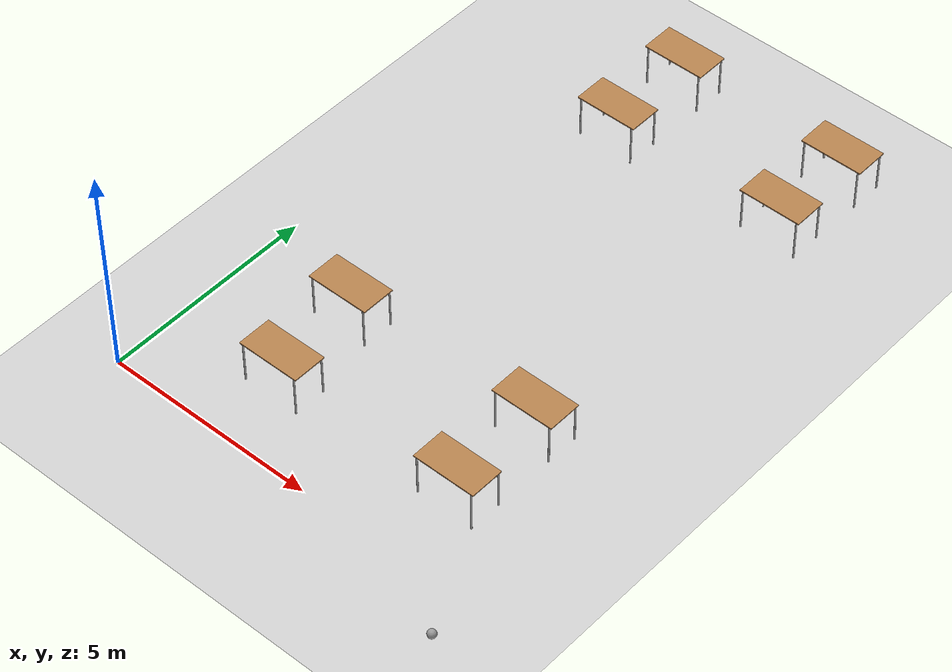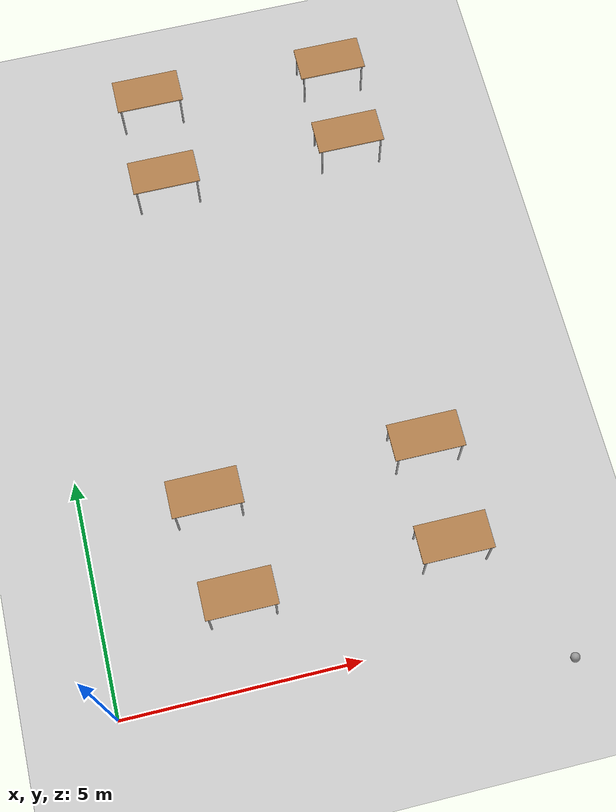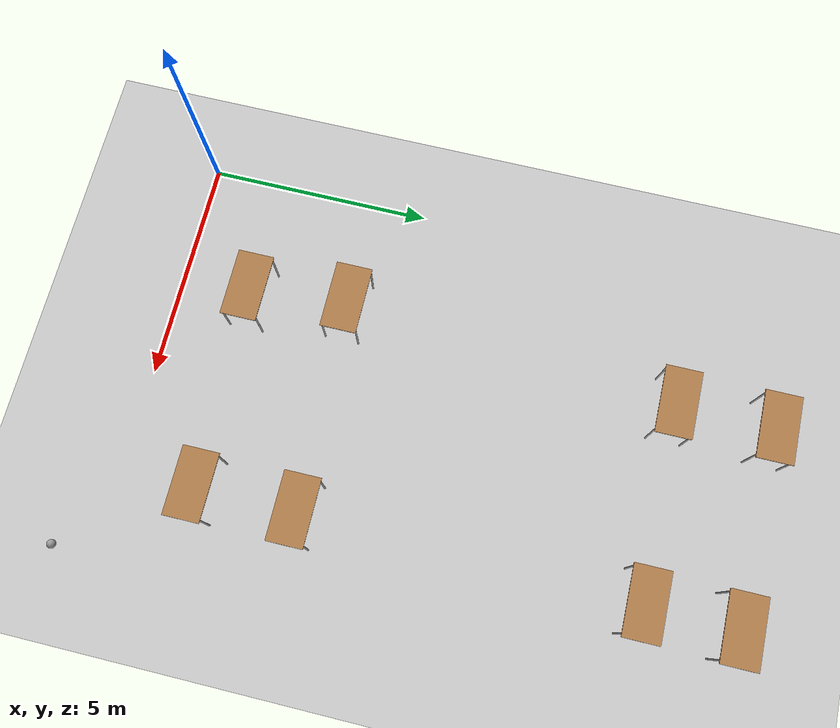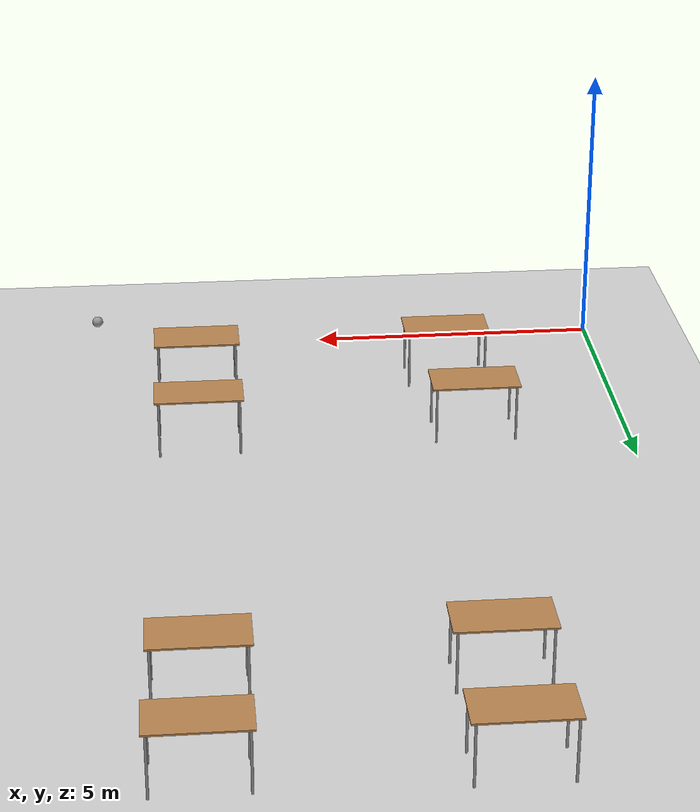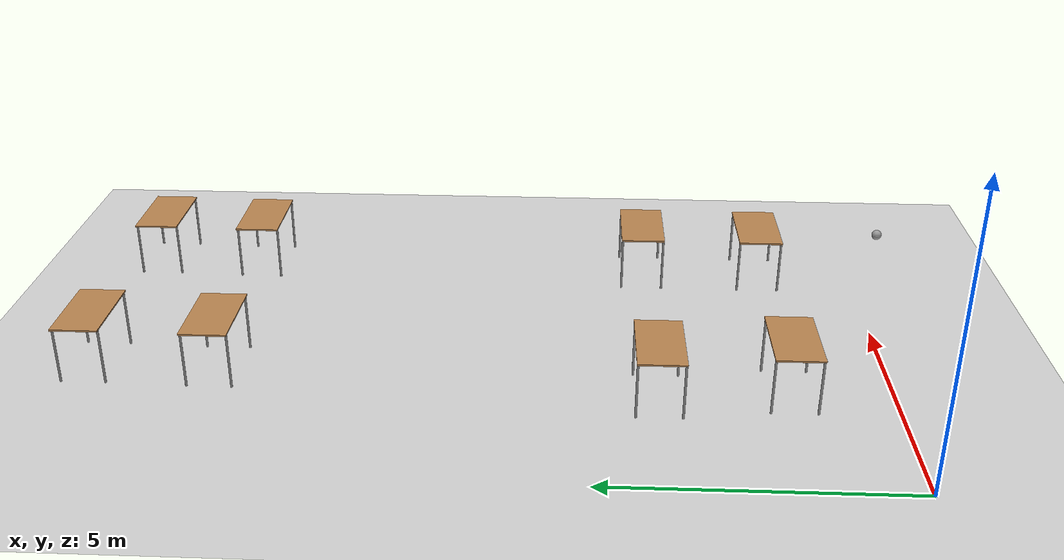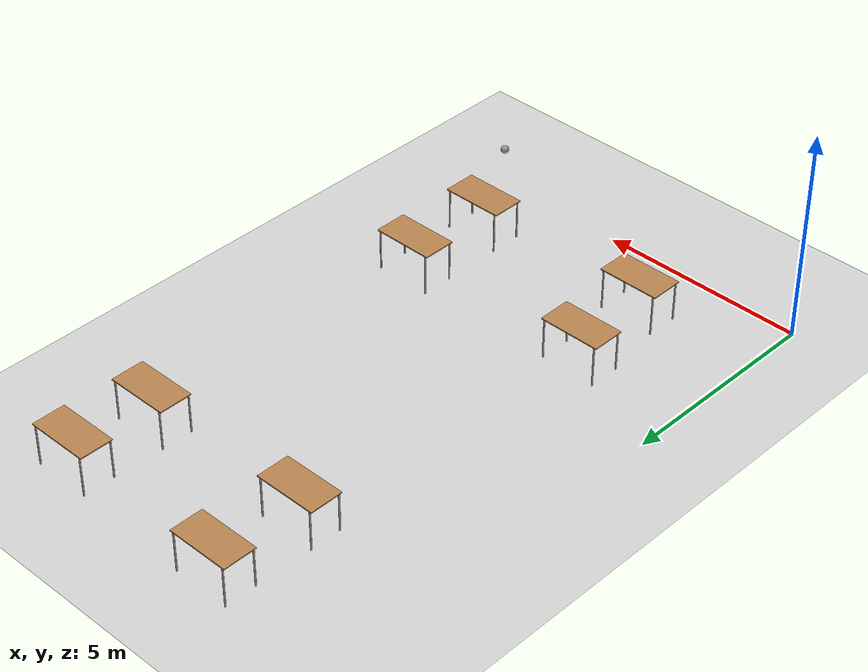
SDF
<sdf version="1.6">
 <world name="default">
  <model name="ground_plane">
   <static>1</static>
   <link name="link">
    <collision name="collision">
     <geometry><plane><normal>0 0 1</normal><size>100 100</size></plane></geometry>
     <surface>
      <contact><collide_bitmask>65535</collide_bitmask></contact>
      <friction><ode><mu>100</mu><mu2>50</mu2></ode></friction>
     </surface>
    </collision>
    <visual name="visual">
     <cast_shadows>0</cast_shadows>
     <geometry><plane><normal>0 0 1</normal><size>100 100</size></plane></geometry>
     <material>
      <script><uri>file://media/materials/scripts/gazebo.material</uri><name>Gazebo/Grey</name></script>
     </material>
    </visual>
   </link>
  </model>
  <model name="table_0">
   <static>1</static>
   <link name="link">
    <collision name="surface">
     <pose>0 0 1 0 -0 0</pose>
     <geometry><box><size>1.5 0.8 0.03</size></box></geometry>
     <surface><friction><ode><mu>0.6</mu><mu2>0.6</mu2></ode></friction></surface>
    </collision>
    <visual name="visual1">
     <pose>0 0 1 0 -0 0</pose>
     <geometry><box><size>1.5 0.8 0.03</size></box></geometry>
     <material>
      <script><uri>file://media/materials/scripts/gazebo.material</uri><name>Gazebo/Wood</name></script>
     </material>
    </visual>
    <collision name="front_left_leg">
     <pose>0.68 0.38 0.5 0 -0 0</pose>
     <geometry><cylinder><radius>0.02</radius><length>1</length></cylinder></geometry>
    </collision>
    <visual name="front_left_leg">
     <pose>0.68 0.38 0.5 0 -0 0</pose>
     <geometry><cylinder><radius>0.02</radius><length>1</length></cylinder></geometry>
     <material>
      <script><uri>file://media/materials/scripts/gazebo.material</uri><name>Gazebo/Grey</name></script>
     </material>
    </visual>
    <collision name="front_right_leg">
     <pose>0.68 -0.38 0.5 0 -0 0</pose>
     <geometry><cylinder><radius>0.02</radius><length>1</length></cylinder></geometry>
    </collision>
    <visual name="front_right_leg">
     <pose>0.68 -0.38 0.5 0 -0 0</pose>
     <geometry><cylinder><radius>0.02</radius><length>1</length></cylinder></geometry>
     <material>
      <script><uri>file://media/materials/scripts/gazebo.material</uri><name>Gazebo/Grey</name></script>
     </material>
    </visual>
    <collision name="back_right_leg">
     <pose>-0.68 -0.38 0.5 0 -0 0</pose>
     <geometry><cylinder><radius>0.02</radius><length>1</length></cylinder></geometry>
    </collision>
    <visual name="back_right_leg">
     <pose>-0.68 -0.38 0.5 0 -0 0</pose>
     <geometry><cylinder><radius>0.02</radius><length>1</length></cylinder></geometry>
     <material>
      <script><uri>file://media/materials/scripts/gazebo.material</uri><name>Gazebo/Grey</name></script>
     </material>
    </visual>
    <collision name="back_left_leg">
     <pose>-0.68 0.38 0.5 0 -0 0</pose>
     <geometry><cylinder><radius>0.02</radius><length>1</length></cylinder></geometry>
    </collision>
    <visual name="back_left_leg">
     <pose>-0.68 0.38 0.5 0 -0 0</pose>
     <geometry><cylinder><radius>0.02</radius><length>1</length></cylinder></geometry>
     <material>
      <script><uri>file://media/materials/scripts/gazebo.material</uri><name>Gazebo/Grey</name></script>
     </material>
    </visual>
   </link>
   <pose>7.55328 13.3497 0 0 -0 0</pose>
  </model>
  <model name="table_clone_2">
   <static>1</static>
   <link name="link">
    <collision name="surface">
     <pose>0 0 1 0 -0 0</pose>
     <geometry><box><size>1.5 0.8 0.03</size></box></geometry>
     <surface><friction><ode><mu>0.6</mu><mu2>0.6</mu2></ode></friction></surface>
    </collision>
    <visual name="visual1">
     <pose>0 0 1 0 -0 0</pose>
     <geometry><box><size>1.5 0.8 0.03</size></box></geometry>
     <material>
      <script><uri>file://media/materials/scripts/gazebo.material</uri><name>Gazebo/Wood</name></script>
     </material>
    </visual>
    <collision name="front_left_leg">
     <pose>0.68 0.38 0.5 0 -0 0</pose>
     <geometry><cylinder><radius>0.02</radius><length>1</length></cylinder></geometry>
    </collision>
    <visual name="front_left_leg">
     <pose>0.68 0.38 0.5 0 -0 0</pose>
     <geometry><cylinder><radius>0.02</radius><length>1</length></cylinder></geometry>
     <material>
      <script><uri>file://media/materials/scripts/gazebo.material</uri><name>Gazebo/Grey</name></script>
     </material>
    </visual>
    <collision name="front_right_leg">
     <pose>0.68 -0.38 0.5 0 -0 0</pose>
     <geometry><cylinder><radius>0.02</radius><length>1</length></cylinder></geometry>
    </collision>
    <visual name="front_right_leg">
     <pose>0.68 -0.38 0.5 0 -0 0</pose>
     <geometry><cylinder><radius>0.02</radius><length>1</length></cylinder></geometry>
     <material>
      <script><uri>file://media/materials/scripts/gazebo.material</uri><name>Gazebo/Grey</name></script>
     </material>
    </visual>
    <collision name="back_right_leg">
     <pose>-0.68 -0.38 0.5 0 -0 0</pose>
     <geometry><cylinder><radius>0.02</radius><length>1</length></cylinder></geometry>
    </collision>
    <visual name="back_right_leg">
     <pose>-0.68 -0.38 0.5 0 -0 0</pose>
     <geometry><cylinder><radius>0.02</radius><length>1</length></cylinder></geometry>
     <material>
      <script><uri>file://media/materials/scripts/gazebo.material</uri><name>Gazebo/Grey</name></script>
     </material>
    </visual>
    <collision name="back_left_leg">
     <pose>-0.68 0.38 0.5 0 -0 0</pose>
     <geometry><cylinder><radius>0.02</radius><length>1</length></cylinder></geometry>
    </collision>
    <visual name="back_left_leg">
     <pose>-0.68 0.38 0.5 0 -0 0</pose>
     <geometry><cylinder><radius>0.02</radius><length>1</length></cylinder></geometry>
     <material>
      <script><uri>file://media/materials/scripts/gazebo.material</uri><name>Gazebo/Grey</name></script>
     </material>
    </visual>
   </link>
   <pose>3.3068 13.4619 0 0 -0 0</pose>
  </model>
  <model name="table_3">
   <static>1</static>
   <link name="link">
    <collision name="surface">
     <pose>0 0 1 0 -0 0</pose>
     <geometry><box><size>1.5 0.8 0.03</size></box></geometry>
     <surface><friction><ode><mu>0.6</mu><mu2>0.6</mu2></ode></friction></surface>
    </collision>
    <visual name="visual1">
     <pose>0 0 1 0 -0 0</pose>
     <geometry><box><size>1.5 0.8 0.03</size></box></geometry>
     <material>
      <script><uri>file://media/materials/scripts/gazebo.material</uri><name>Gazebo/Wood</name></script>
     </material>
    </visual>
    <collision name="front_left_leg">
     <pose>0.68 0.38 0.5 0 -0 0</pose>
     <geometry><cylinder><radius>0.02</radius><length>1</length></cylinder></geometry>
    </collision>
    <visual name="front_left_leg">
     <pose>0.68 0.38 0.5 0 -0 0</pose>
     <geometry><cylinder><radius>0.02</radius><length>1</length></cylinder></geometry>
     <material>
      <script><uri>file://media/materials/scripts/gazebo.material</uri><name>Gazebo/Grey</name></script>
     </material>
    </visual>
    <collision name="front_right_leg">
     <pose>0.68 -0.38 0.5 0 -0 0</pose>
     <geometry><cylinder><radius>0.02</radius><length>1</length></cylinder></geometry>
    </collision>
    <visual name="front_right_leg">
     <pose>0.68 -0.38 0.5 0 -0 0</pose>
     <geometry><cylinder><radius>0.02</radius><length>1</length></cylinder></geometry>
     <material>
      <script><uri>file://media/materials/scripts/gazebo.material</uri><name>Gazebo/Grey</name></script>
     </material>
    </visual>
    <collision name="back_right_leg">
     <pose>-0.68 -0.38 0.5 0 -0 0</pose>
     <geometry><cylinder><radius>0.02</radius><length>1</length></cylinder></geometry>
    </collision>
    <visual name="back_right_leg">
     <pose>-0.68 -0.38 0.5 0 -0 0</pose>
     <geometry><cylinder><radius>0.02</radius><length>1</length></cylinder></geometry>
     <material>
      <script><uri>file://media/materials/scripts/gazebo.material</uri><name>Gazebo/Grey</name></script>
     </material>
    </visual>
    <collision name="back_left_leg">
     <pose>-0.68 0.38 0.5 0 -0 0</pose>
     <geometry><cylinder><radius>0.02</radius><length>1</length></cylinder></geometry>
    </collision>
    <visual name="back_left_leg">
     <pose>-0.68 0.38 0.5 0 -0 0</pose>
     <geometry><cylinder><radius>0.02</radius><length>1</length></cylinder></geometry>
     <material>
      <script><uri>file://media/materials/scripts/gazebo.material</uri><name>Gazebo/Grey</name></script>
     </material>
    </visual>
   </link>
   <pose>7.33008 4.00792 0 0 -0 0</pose>
  </model>
  <model name="table_4">
   <static>1</static>
   <link name="link">
    <collision name="surface">
     <pose>0 0 1 0 -0 0</pose>
     <geometry><box><size>1.5 0.8 0.03</size></box></geometry>
     <surface><friction><ode><mu>0.6</mu><mu2>0.6</mu2></ode></friction></surface>
    </collision>
    <visual name="visual1">
     <pose>0 0 1 0 -0 0</pose>
     <geometry><box><size>1.5 0.8 0.03</size></box></geometry>
     <material>
      <script><uri>file://media/materials/scripts/gazebo.material</uri><name>Gazebo/Wood</name></script>
     </material>
    </visual>
    <collision name="front_left_leg">
     <pose>0.68 0.38 0.5 0 -0 0</pose>
     <geometry><cylinder><radius>0.02</radius><length>1</length></cylinder></geometry>
    </collision>
    <visual name="front_left_leg">
     <pose>0.68 0.38 0.5 0 -0 0</pose>
     <geometry><cylinder><radius>0.02</radius><length>1</length></cylinder></geometry>
     <material>
      <script><uri>file://media/materials/scripts/gazebo.material</uri><name>Gazebo/Grey</name></script>
     </material>
    </visual>
    <collision name="front_right_leg">
     <pose>0.68 -0.38 0.5 0 -0 0</pose>
     <geometry><cylinder><radius>0.02</radius><length>1</length></cylinder></geometry>
    </collision>
    <visual name="front_right_leg">
     <pose>0.68 -0.38 0.5 0 -0 0</pose>
     <geometry><cylinder><radius>0.02</radius><length>1</length></cylinder></geometry>
     <material>
      <script><uri>file://media/materials/scripts/gazebo.material</uri><name>Gazebo/Grey</name></script>
     </material>
    </visual>
    <collision name="back_right_leg">
     <pose>-0.68 -0.38 0.5 0 -0 0</pose>
     <geometry><cylinder><radius>0.02</radius><length>1</length></cylinder></geometry>
    </collision>
    <visual name="back_right_leg">
     <pose>-0.68 -0.38 0.5 0 -0 0</pose>
     <geometry><cylinder><radius>0.02</radius><length>1</length></cylinder></geometry>
     <material>
      <script><uri>file://media/materials/scripts/gazebo.material</uri><name>Gazebo/Grey</name></script>
     </material>
    </visual>
    <collision name="back_left_leg">
     <pose>-0.68 0.38 0.5 0 -0 0</pose>
     <geometry><cylinder><radius>0.02</radius><length>1</length></cylinder></geometry>
    </collision>
    <visual name="back_left_leg">
     <pose>-0.68 0.38 0.5 0 -0 0</pose>
     <geometry><cylinder><radius>0.02</radius><length>1</length></cylinder></geometry>
     <material>
      <script><uri>file://media/materials/scripts/gazebo.material</uri><name>Gazebo/Grey</name></script>
     </material>
    </visual>
   </link>
   <pose>2.63408 3.89107 0 0 -0 0</pose>
  </model>
  <model name="table_clone_3">
   <static>1</static>
   <link name="link">
    <collision name="surface">
     <pose>0 0 1 0 -0 0</pose>
     <geometry><box><size>1.5 0.8 0.03</size></box></geometry>
     <surface><friction><ode><mu>0.6</mu><mu2>0.6</mu2></ode></friction></surface>
    </collision>
    <visual name="visual1">
     <pose>0 0 1 0 -0 0</pose>
     <geometry><box><size>1.5 0.8 0.03</size></box></geometry>
     <material>
      <script><uri>file://media/materials/scripts/gazebo.material</uri><name>Gazebo/Wood</name></script>
     </material>
    </visual>
    <collision name="front_left_leg">
     <pose>0.68 0.38 0.5 0 -0 0</pose>
     <geometry><cylinder><radius>0.02</radius><length>1</length></cylinder></geometry>
    </collision>
    <visual name="front_left_leg">
     <pose>0.68 0.38 0.5 0 -0 0</pose>
     <geometry><cylinder><radius>0.02</radius><length>1</length></cylinder></geometry>
     <material>
      <script><uri>file://media/materials/scripts/gazebo.material</uri><name>Gazebo/Grey</name></script>
     </material>
    </visual>
    <collision name="front_right_leg">
     <pose>0.68 -0.38 0.5 0 -0 0</pose>
     <geometry><cylinder><radius>0.02</radius><length>1</length></cylinder></geometry>
    </collision>
    <visual name="front_right_leg">
     <pose>0.68 -0.38 0.5 0 -0 0</pose>
     <geometry><cylinder><radius>0.02</radius><length>1</length></cylinder></geometry>
     <material>
      <script><uri>file://media/materials/scripts/gazebo.material</uri><name>Gazebo/Grey</name></script>
     </material>
    </visual>
    <collision name="back_right_leg">
     <pose>-0.68 -0.38 0.5 0 -0 0</pose>
     <geometry><cylinder><radius>0.02</radius><length>1</length></cylinder></geometry>
    </collision>
    <visual name="back_right_leg">
     <pose>-0.68 -0.38 0.5 0 -0 0</pose>
     <geometry><cylinder><radius>0.02</radius><length>1</length></cylinder></geometry>
     <material>
      <script><uri>file://media/materials/scripts/gazebo.material</uri><name>Gazebo/Grey</name></script>
     </material>
    </visual>
    <collision name="back_left_leg">
     <pose>-0.68 0.38 0.5 0 -0 0</pose>
     <geometry><cylinder><radius>0.02</radius><length>1</length></cylinder></geometry>
    </collision>
    <visual name="back_left_leg">
     <pose>-0.68 0.38 0.5 0 -0 0</pose>
     <geometry><cylinder><radius>0.02</radius><length>1</length></cylinder></geometry>
     <material>
      <script><uri>file://media/materials/scripts/gazebo.material</uri><name>Gazebo/Grey</name></script>
     </material>
    </visual>
   </link>
   <pose>7.50168 11.381 0 0 -0 0</pose>
  </model>
  <model name="table_clone_4">
   <static>1</static>
   <link name="link">
    <collision name="surface">
     <pose>0 0 1 0 -0 0</pose>
     <geometry><box><size>1.5 0.8 0.03</size></box></geometry>
     <surface><friction><ode><mu>0.6</mu><mu2>0.6</mu2></ode></friction></surface>
    </collision>
    <visual name="visual1">
     <pose>0 0 1 0 -0 0</pose>
     <geometry><box><size>1.5 0.8 0.03</size></box></geometry>
     <material>
      <script><uri>file://media/materials/scripts/gazebo.material</uri><name>Gazebo/Wood</name></script>
     </material>
    </visual>
    <collision name="front_left_leg">
     <pose>0.68 0.38 0.5 0 -0 0</pose>
     <geometry><cylinder><radius>0.02</radius><length>1</length></cylinder></geometry>
    </collision>
    <visual name="front_left_leg">
     <pose>0.68 0.38 0.5 0 -0 0</pose>
     <geometry><cylinder><radius>0.02</radius><length>1</length></cylinder></geometry>
     <material>
      <script><uri>file://media/materials/scripts/gazebo.material</uri><name>Gazebo/Grey</name></script>
     </material>
    </visual>
    <collision name="front_right_leg">
     <pose>0.68 -0.38 0.5 0 -0 0</pose>
     <geometry><cylinder><radius>0.02</radius><length>1</length></cylinder></geometry>
    </collision>
    <visual name="front_right_leg">
     <pose>0.68 -0.38 0.5 0 -0 0</pose>
     <geometry><cylinder><radius>0.02</radius><length>1</length></cylinder></geometry>
     <material>
      <script><uri>file://media/materials/scripts/gazebo.material</uri><name>Gazebo/Grey</name></script>
     </material>
    </visual>
    <collision name="back_right_leg">
     <pose>-0.68 -0.38 0.5 0 -0 0</pose>
     <geometry><cylinder><radius>0.02</radius><length>1</length></cylinder></geometry>
    </collision>
    <visual name="back_right_leg">
     <pose>-0.68 -0.38 0.5 0 -0 0</pose>
     <geometry><cylinder><radius>0.02</radius><length>1</length></cylinder></geometry>
     <material>
      <script><uri>file://media/materials/scripts/gazebo.material</uri><name>Gazebo/Grey</name></script>
     </material>
    </visual>
    <collision name="back_left_leg">
     <pose>-0.68 0.38 0.5 0 -0 0</pose>
     <geometry><cylinder><radius>0.02</radius><length>1</length></cylinder></geometry>
    </collision>
    <visual name="back_left_leg">
     <pose>-0.68 0.38 0.5 0 -0 0</pose>
     <geometry><cylinder><radius>0.02</radius><length>1</length></cylinder></geometry>
     <material>
      <script><uri>file://media/materials/scripts/gazebo.material</uri><name>Gazebo/Grey</name></script>
     </material>
    </visual>
   </link>
   <pose>3.25865 11.3215 0 0 -0 0</pose>
  </model>
  <model name="table_clone_5">
   <static>1</static>
   <link name="link">
    <collision name="surface">
     <pose>0 0 1 0 -0 0</pose>
     <geometry><box><size>1.5 0.8 0.03</size></box></geometry>
     <surface><friction><ode><mu>0.6</mu><mu2>0.6</mu2></ode></friction></surface>
    </collision>
    <visual name="visual1">
     <pose>0 0 1 0 -0 0</pose>
     <geometry><box><size>1.5 0.8 0.03</size></box></geometry>
     <material>
      <script><uri>file://media/materials/scripts/gazebo.material</uri><name>Gazebo/Wood</name></script>
     </material>
    </visual>
    <collision name="front_left_leg">
     <pose>0.68 0.38 0.5 0 -0 0</pose>
     <geometry><cylinder><radius>0.02</radius><length>1</length></cylinder></geometry>
    </collision>
    <visual name="front_left_leg">
     <pose>0.68 0.38 0.5 0 -0 0</pose>
     <geometry><cylinder><radius>0.02</radius><length>1</length></cylinder></geometry>
     <material>
      <script><uri>file://media/materials/scripts/gazebo.material</uri><name>Gazebo/Grey</name></script>
     </material>
    </visual>
    <collision name="front_right_leg">
     <pose>0.68 -0.38 0.5 0 -0 0</pose>
     <geometry><cylinder><radius>0.02</radius><length>1</length></cylinder></geometry>
    </collision>
    <visual name="front_right_leg">
     <pose>0.68 -0.38 0.5 0 -0 0</pose>
     <geometry><cylinder><radius>0.02</radius><length>1</length></cylinder></geometry>
     <material>
      <script><uri>file://media/materials/scripts/gazebo.material</uri><name>Gazebo/Grey</name></script>
     </material>
    </visual>
    <collision name="back_right_leg">
     <pose>-0.68 -0.38 0.5 0 -0 0</pose>
     <geometry><cylinder><radius>0.02</radius><length>1</length></cylinder></geometry>
    </collision>
    <visual name="back_right_leg">
     <pose>-0.68 -0.38 0.5 0 -0 0</pose>
     <geometry><cylinder><radius>0.02</radius><length>1</length></cylinder></geometry>
     <material>
      <script><uri>file://media/materials/scripts/gazebo.material</uri><name>Gazebo/Grey</name></script>
     </material>
    </visual>
    <collision name="back_left_leg">
     <pose>-0.68 0.38 0.5 0 -0 0</pose>
     <geometry><cylinder><radius>0.02</radius><length>1</length></cylinder></geometry>
    </collision>
    <visual name="back_left_leg">
     <pose>-0.68 0.38 0.5 0 -0 0</pose>
     <geometry><cylinder><radius>0.02</radius><length>1</length></cylinder></geometry>
     <material>
      <script><uri>file://media/materials/scripts/gazebo.material</uri><name>Gazebo/Grey</name></script>
     </material>
    </visual>
   </link>
   <pose>7.31912 1.80991 0 0 -0 0</pose>
  </model>
  <model name="table_clone_6">
   <static>1</static>
   <link name="link">
    <collision name="surface">
     <pose>0 0 1 0 -0 0</pose>
     <geometry><box><size>1.5 0.8 0.03</size></box></geometry>
     <surface><friction><ode><mu>0.6</mu><mu2>0.6</mu2></ode></friction></surface>
    </collision>
    <visual name="visual1">
     <pose>0 0 1 0 -0 0</pose>
     <geometry><box><size>1.5 0.8 0.03</size></box></geometry>
     <material>
      <script><uri>file://media/materials/scripts/gazebo.material</uri><name>Gazebo/Wood</name></script>
     </material>
    </visual>
    <collision name="front_left_leg">
     <pose>0.68 0.38 0.5 0 -0 0</pose>
     <geometry><cylinder><radius>0.02</radius><length>1</length></cylinder></geometry>
    </collision>
    <visual name="front_left_leg">
     <pose>0.68 0.38 0.5 0 -0 0</pose>
     <geometry><cylinder><radius>0.02</radius><length>1</length></cylinder></geometry>
     <material>
      <script><uri>file://media/materials/scripts/gazebo.material</uri><name>Gazebo/Grey</name></script>
     </material>
    </visual>
    <collision name="front_right_leg">
     <pose>0.68 -0.38 0.5 0 -0 0</pose>
     <geometry><cylinder><radius>0.02</radius><length>1</length></cylinder></geometry>
    </collision>
    <visual name="front_right_leg">
     <pose>0.68 -0.38 0.5 0 -0 0</pose>
     <geometry><cylinder><radius>0.02</radius><length>1</length></cylinder></geometry>
     <material>
      <script><uri>file://media/materials/scripts/gazebo.material</uri><name>Gazebo/Grey</name></script>
     </material>
    </visual>
    <collision name="back_right_leg">
     <pose>-0.68 -0.38 0.5 0 -0 0</pose>
     <geometry><cylinder><radius>0.02</radius><length>1</length></cylinder></geometry>
    </collision>
    <visual name="back_right_leg">
     <pose>-0.68 -0.38 0.5 0 -0 0</pose>
     <geometry><cylinder><radius>0.02</radius><length>1</length></cylinder></geometry>
     <material>
      <script><uri>file://media/materials/scripts/gazebo.material</uri><name>Gazebo/Grey</name></script>
     </material>
    </visual>
    <collision name="back_left_leg">
     <pose>-0.68 0.38 0.5 0 -0 0</pose>
     <geometry><cylinder><radius>0.02</radius><length>1</length></cylinder></geometry>
    </collision>
    <visual name="back_left_leg">
     <pose>-0.68 0.38 0.5 0 -0 0</pose>
     <geometry><cylinder><radius>0.02</radius><length>1</length></cylinder></geometry>
     <material>
      <script><uri>file://media/materials/scripts/gazebo.material</uri><name>Gazebo/Grey</name></script>
     </material>
    </visual>
   </link>
   <pose>2.86362 1.71508 0 0 -0 0</pose>
  </model>
  <model name="my_ball">
   <link name="link_0">
    <inertial>
     <mass>1</mass>
     <inertia><ixx>0.1</ixx><ixy>0</ixy><ixz>0</ixz><iyy>0.1</iyy><iyz>0</iyz><izz>0.1</izz></inertia>
    </inertial>
    <visual name="visual">
     <geometry><sphere><radius>0.1</radius></sphere></geometry>
     <material>
      <lighting>1</lighting>
      <script><uri>file://media/materials/scripts/gazebo.material</uri><name>Gazebo/Grey</name></script>
      <shader type="pixel"><normal_map>__default__</normal_map></shader>
      <ambient>1 1 1 1</ambient>
      <diffuse>1 1 1 1</diffuse>
      <specular>1 1 1 1</specular>
      <emissive>1 1 1 1</emissive>
     </material>
    </visual>
    <collision name="collision">
     <geometry><sphere><radius>0.1</radius></sphere></geometry>
     <surface>
      <friction>
       <ode><mu>1</mu><mu2>1</mu2><fdir1>0 0 0</fdir1><slip1>0</slip1><slip2>0</slip2></ode>
       <torsional>
        <coefficient>1</coefficient>
        <patch_radius>0</patch_radius>
        <surface_radius>0</surface_radius>
        <use_patch_radius>1</use_patch_radius>
        <ode><slip>0</slip></ode>
       </torsional>
      </friction>
      <bounce><restitution_coefficient>0</restitution_coefficient><threshold>1e+06</threshold></bounce>
      <contact>
       <collide_without_contact>0</collide_without_contact>
       <collide_without_contact_bitmask>1</collide_without_contact_bitmask>
       <collide_bitmask>1</collide_bitmask>
       <ode>
        <soft_cfm>0</soft_cfm>
        <soft_erp>0.2</soft_erp>
        <kp>1e+13</kp>
        <kd>1</kd>
        <max_vel>0.01</max_vel>
        <min_depth>0</min_depth>
       </ode>
       <bullet>
        <split_impulse>1</split_impulse>
        <split_impulse_penetration_threshold>-0.01</split_impulse_penetration_threshold>
        <soft_cfm>0</soft_cfm>
        <soft_erp>0.2</soft_erp>
        <kp>1e+13</kp>
        <kd>1</kd>
       </bullet>
      </contact>
     </surface>
    </collision>
   </link>
   <static>0</static>
   <pose>9.15594 -0.940557 0.1 0 -0 0</pose>
  </model>
 </world>
</sdf>
